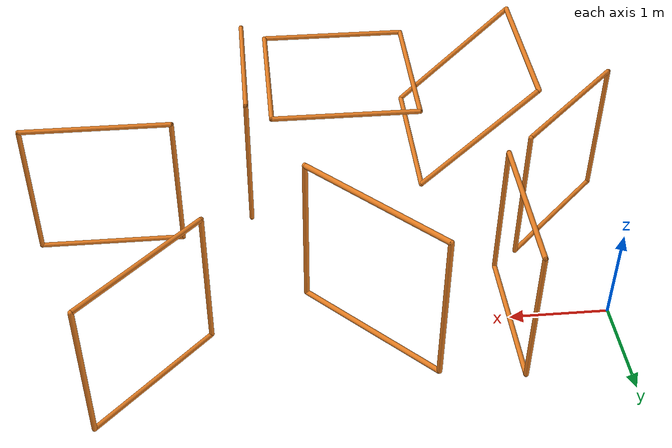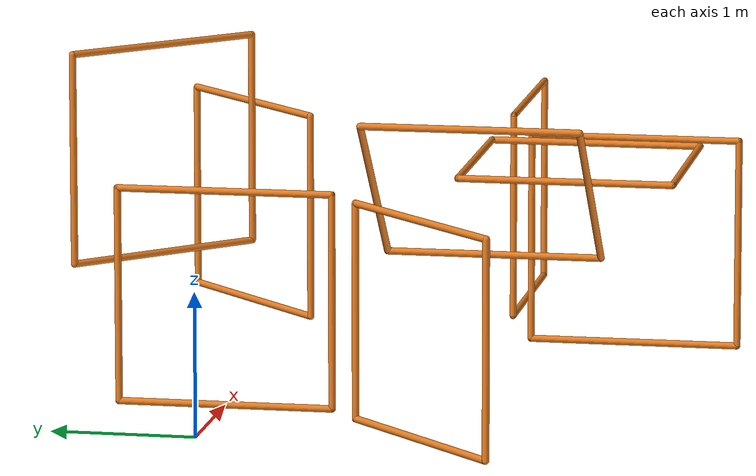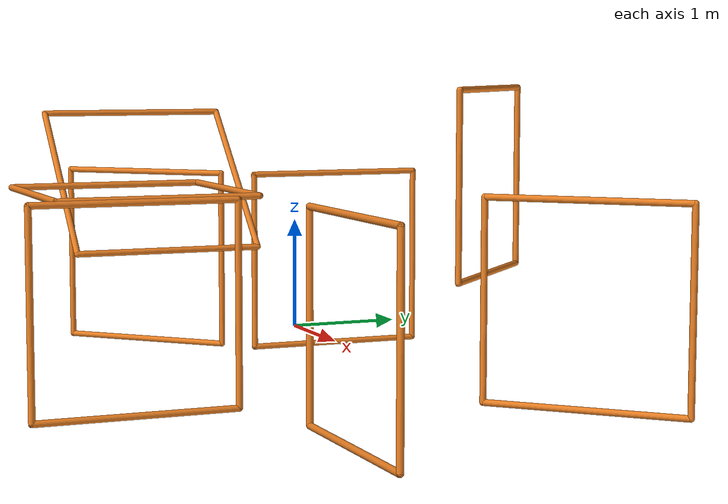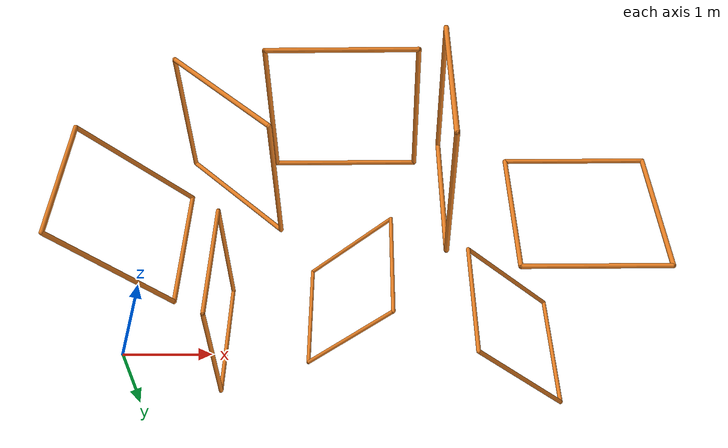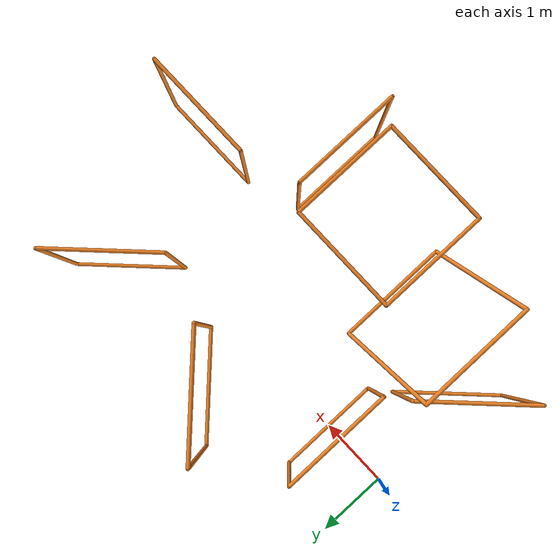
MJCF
<mujoco model="Quadrotor Gates">
  <compiler meshdir="F:/--CodeRepo/--CodeRepo/Research/___Mujoco/mujoco/mujoco/icse27/mujoco_rl_fuzz_2.0/.cache/repos/mujoco_mpc/mjpc/tasks/quadrotor" texturedir="F:/--CodeRepo/--CodeRepo/Research/___Mujoco/mujoco/mujoco/icse27/mujoco_rl_fuzz_2.0/.cache/repos/mujoco_mpc/mjpc/tasks/quadrotor" assetdir="F:/--CodeRepo/--CodeRepo/Research/___Mujoco/mujoco/mujoco/icse27/mujoco_rl_fuzz_2.0/.cache/repos/mujoco_mpc/mjpc/tasks/quadrotor"/><worldbody>
    <!-- gate 1 -->
    <body name="gate1_left" pos="1.0 0.75 0.75" quat="1 0 0 0">
      <geom type="capsule" size="0.025 0.1 0.05" rgba="0.902 0.494 0.133 1" fromto="0.0 0 -0.75 0.0 0 0.75"/>
    </body>
    <body name="gate1_right" pos="1.0 -0.75 0.75" quat="1 0 0 0">
      <geom type="capsule" size="0.025 0.1 0.05" rgba="0.902 0.494 0.133 1" fromto="0.0 0 -0.75 0.0 0 0.75"/>
    </body>
    <body name="gate1_top" pos="1.0 0.0 1.5" quat="1 0 0 0">
      <geom type="capsule" size="0.025 0.1 0.05" rgba="0.902 0.494 0.133 1" fromto="0.0 -0.75 0.0 0.0 0.75 0.0"/>
    </body>
    <body name="gate1_bottom" pos="1.0 0.0 0.0" quat="1 0 0 0">
      <geom type="capsule" size="0.025 0.1 0.05" rgba="0.902 0.494 0.133 1" fromto="0.0 -0.75 0.0 0.0 0.75 0.0"/>
    </body>

    <!-- gate 2 -->
    <body name="gate2_left" pos="1.968 1.281 1.5" quat="0.92388 0.0 0.0 0.382683">
      <geom type="capsule" size="0.025 0.1 0.05" rgba="0.902 0.494 0.133 1" fromto="0.0 0 -0.75 0.0 0 0.75"/>
    </body>
    <body name="gate2_right" pos="3.036 0.213 1.5" quat="0.92388 0.0 0.0 0.382683">
      <geom type="capsule" size="0.025 0.1 0.05" rgba="0.902 0.494 0.133 1" fromto="0.0 0 -0.75 0.0 0 0.75"/>
    </body>
    <body name="gate2_top" pos="2.5 0.75 2.25" quat="0.92388 0.0 0.0 0.382683">
      <geom type="capsule" size="0.025 0.1 0.05" rgba="0.902 0.494 0.133 1" fromto="0.0 -0.75 0.0 0.0 0.75 0.0"/>
    </body>
    <body name="gate2_bottom" pos="2.5 0.75 0.75" quat="0.92388 0.0 0.0 0.382683">
      <geom type="capsule" size="0.025 0.1 0.05" rgba="0.902 0.494 0.133 1" fromto="0.0 -0.75 0.0 0.0 0.75 0.0"/>
    </body>

    <!-- gate 3 -->
    <body name="gate3_left" pos="5.036 1.036 0.75" quat="0.92388 0.0 0.0 -0.382683">
      <geom type="capsule" size="0.025 0.1 0.05" rgba="0.902 0.494 0.133 1" fromto="0.0 0 -0.75 0.0 0 0.75"/>
    </body>
    <body name="gate3_right" pos="3.963 -0.036 0.75" quat="0.92388 0.0 0.0 -0.382683">
      <geom type="capsule" size="0.025 0.1 0.05" rgba="0.902 0.494 0.133 1" fromto="0.0 0 -0.75 0.0 0 0.75"/>
    </body>
    <body name="gate3_top" pos="4.5 0.5 1.5" quat="0.92388 0.0 0.0 -0.382683">
      <geom type="capsule" size="0.025 0.1 0.05" rgba="0.902 0.494 0.133 1" fromto="0.0 -0.75 0.0 0.0 0.75 0.0"/>
    </body>
    <body name="gate3_bottom" pos="4.5 0.5 0.0" quat="0.92388 0.0 0.0 -0.382683">
      <geom type="capsule" size="0.025 0.1 0.05" rgba="0.902 0.494 0.133 1" fromto="0.0 -0.75 0.0 0.0 0.75 0.0"/>
    </body>

    <!-- gate 4 -->
    <body name="gate4_left" pos="5.75 -1.5 0.75" quat="0.7071 0 0 0.7071">
      <geom type="capsule" size="0.025 0.1 0.05" rgba="0.902 0.494 0.133 1" fromto="0.0 0 -0.75 0.0 0 0.75"/>
    </body>
    <body name="gate4_right" pos="4.25 -1.5 0.75" quat="0.7071 0 0 0.7071">
      <geom type="capsule" size="0.025 0.1 0.05" rgba="0.902 0.494 0.133 1" fromto="0.0 0 -0.75 0.0 0 0.75"/>
    </body>
    <body name="gate4_top" pos="5.0 -1.5 1.5" quat="0.7071 0 0 0.7071">
      <geom type="capsule" size="0.025 0.1 0.05" rgba="0.902 0.494 0.133 1" fromto="0.0 -0.75 0.0 0.0 0.75 0.0"/>
    </body>
    <body name="gate4_bottom" pos="5.0 -1.5 0.0" quat="0.7071 0 0 0.7071">
      <geom type="capsule" size="0.025 0.1 0.05" rgba="0.902 0.494 0.133 1" fromto="0.0 -0.75 0.0 0.0 0.75 0.0"/>
    </body>

    <!-- gate 5 -->
    <body name="gate5_left" pos="3.5 -3.25 0.75" quat="1 0 0 0">
      <geom type="capsule" size="0.025 0.1 0.05" rgba="0.902 0.494 0.133 1" fromto="0.0 0 -0.75 0.0 0 0.75"/>
    </body>
    <body name="gate5_right" pos="3.5 -1.75 0.75" quat="1 0 0 0">
      <geom type="capsule" size="0.025 0.1 0.05" rgba="0.902 0.494 0.133 1" fromto="0.0 0 -0.75 0.0 0 0.75"/>
    </body>
    <body name="gate5_top" pos="3.5 -2.5 1.5" quat="1 0 0 0">
      <geom type="capsule" size="0.025 0.1 0.05" rgba="0.902 0.494 0.133 1" fromto="0.0 -0.75 0.0 0.0 0.75 0.0"/>
    </body>
    <body name="gate5_bottom" pos="3.5 -2.5 0.0" quat="1 0 0 0">
      <geom type="capsule" size="0.025 0.1 0.05" rgba="0.902 0.494 0.133 1" fromto="0.0 -0.75 0.0 0.0 0.75 0.0"/>
    </body>

    <!-- gate 6 -->
    <body name="gate6_left" pos="2.5 -1.5 1.5" quat="1 0 0 0">
      <geom type="capsule" size="0.025 0.1 0.05" rgba="0.902 0.494 0.133 1" fromto="-0.75 0.0 0.0 0.75 0.0 0.0"/>
    </body>
    <body name="gate6_right" pos="2.5 -3.0 1.5" quat="1 0 0 0">
      <geom type="capsule" size="0.025 0.1 0.05" rgba="0.902 0.494 0.133 1" fromto="-0.75 0.0 0.0 0.75 0.0 0.0"/>
    </body>
    <body name="gate6_top" pos="3.25 -2.25 1.5" quat="1 0 0 0">
      <geom type="capsule" size="0.025 0.1 0.05" rgba="0.902 0.494 0.133 1" fromto="0.0 -0.75 0.0 0.0 0.75 0.0"/>
    </body>
    <body name="gate6_bottom" pos="1.75 -2.25 1.5" quat="1 0 0 0">
      <geom type="capsule" size="0.025 0.1 0.05" rgba="0.902 0.494 0.133 1" fromto="0.0 -0.75 0.0 0.0 0.75 0.0"/>
    </body>

    <!-- gate 7 -->
    <body name="gate7_left" pos="1.25 -2.5 1.5" quat="0.9238 0.0 -0.382683 0.0">
      <geom type="capsule" size="0.025 0.1 0.05" rgba="0.902 0.494 0.133 1" fromto="0.0 0 -0.75 0.0 0 0.75"/>
    </body>
    <body name="gate7_right" pos="1.25 -1.0 1.5" quat="0.9238 0.0 -0.382683 0.0">
      <geom type="capsule" size="0.025 0.1 0.05" rgba="0.902 0.494 0.133 1" fromto="0.0 0 -0.75 0.0 0 0.75"/>
    </body>
    <body name="gate7_top" pos="0.713 -1.75 2.036" quat="0.9238 0.0 -0.382683 0.0">
      <geom type="capsule" size="0.025 0.1 0.05" rgba="0.902 0.494 0.133 1" fromto="0.0 -0.75 0.0 0.0 0.75 0.0"/>
    </body>
    <body name="gate7_bottom" pos="1.786 -1.75 .963" quat="0.9238 0.0 -0.382683 0.0">
      <geom type="capsule" size="0.025 0.1 0.05" rgba="0.902 0.494 0.133 1" fromto="0.0 -0.75 0.0 0.0 0.75 0.0"/>
    </body>

    <!-- gate 8 -->
    <body name="gate8_left" pos="0.736 -.963 0.75" quat="0.92388 0.0 0.0 -0.382683">
      <geom type="capsule" size="0.025 0.1 0.05" rgba="0.902 0.494 0.133 1" fromto="0.0 0 -0.75 0.0 0 0.75"/>
    </body>
    <body name="gate8_right" pos="-0.336 -2.036 0.75" quat="0.92388 0.0 0.0 -0.382683">
      <geom type="capsule" size="0.025 0.1 0.05" rgba="0.902 0.494 0.133 1" fromto="0.0 0 -0.75 0.0 0 0.75"/>
    </body>
    <body name="gate8_top" pos="0.2 -1.5 1.5" quat="0.92388 0.0 0.0 -0.382683">
      <geom type="capsule" size="0.025 0.1 0.05" rgba="0.902 0.494 0.133 1" fromto="0.0 -0.75 0.0 0.0 0.75 0.0"/>
    </body>
    <body name="gate8_bottom" pos="0.2 -1.5 0.0" quat="0.92388 0.0 0.0 -0.382683">
      <geom type="capsule" size="0.025 0.1 0.05" rgba="0.902 0.494 0.133 1" fromto="0.0 -0.75 0.0 0.0 0.75 0.0"/>
    </body>
  </worldbody>
</mujoco>
